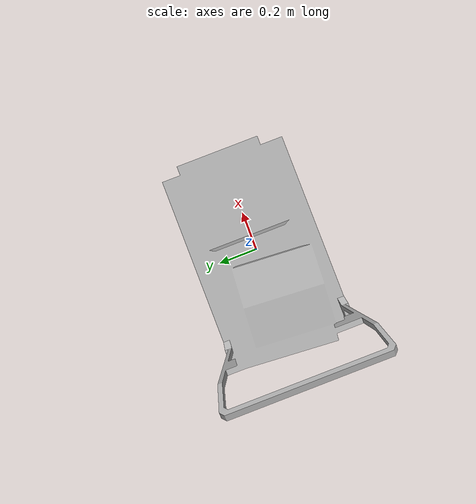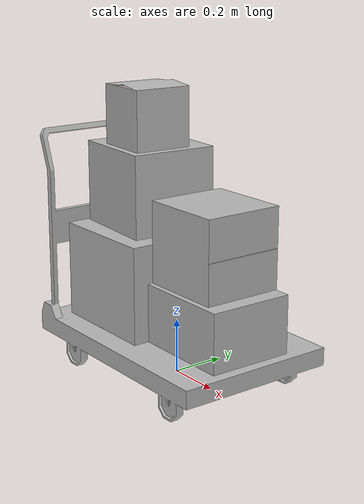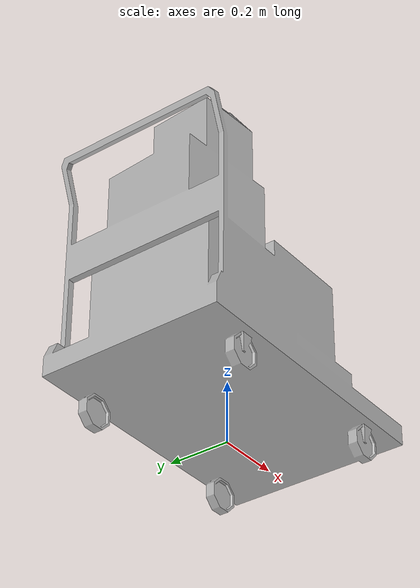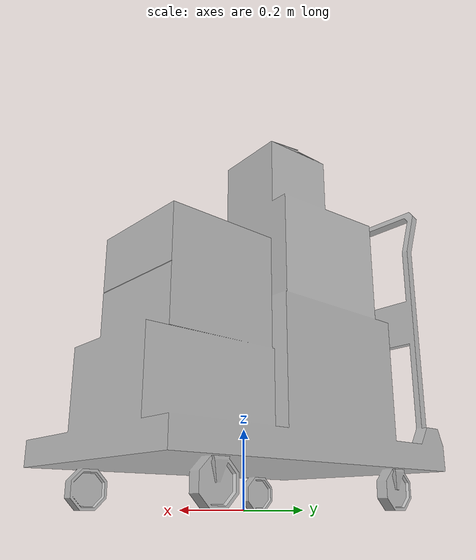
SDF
<sdf version="1.6">
  <model name="TrolleyBox2">
   <static>true</static>
    <link name="body">
      <pose>0 0 0 0 0 0</pose>

      <visual name="visual">
        <geometry>
          <mesh>
            <uri>model://TrolleyBox2/meshes/TrolleyBox2.obj</uri>
          </mesh>
        </geometry>
      </visual>

      <collision name="collision">
        <geometry>
          <mesh>
            <uri>model://TrolleyBox2/meshes/TrolleyBox2_Col.obj</uri>
          </mesh>
        </geometry>
      </collision>

    </link>
  </model>
</sdf>
